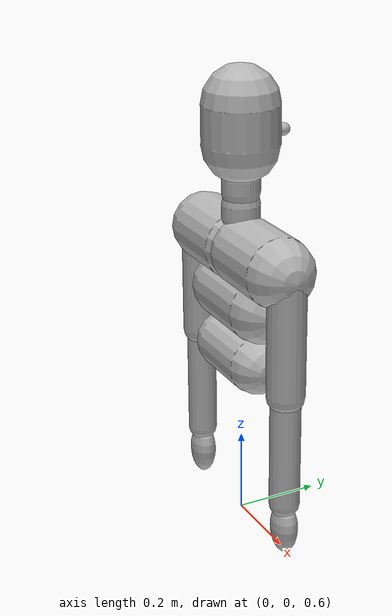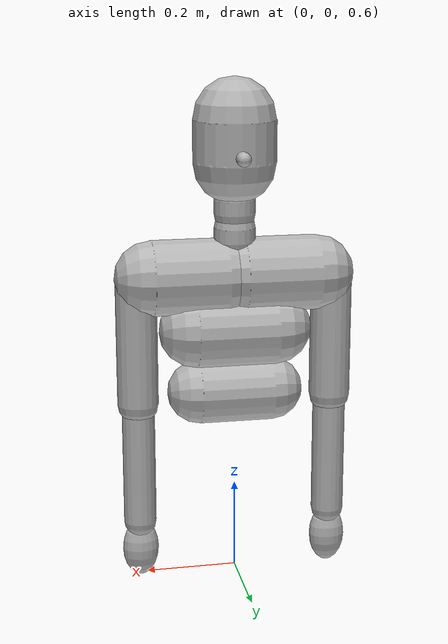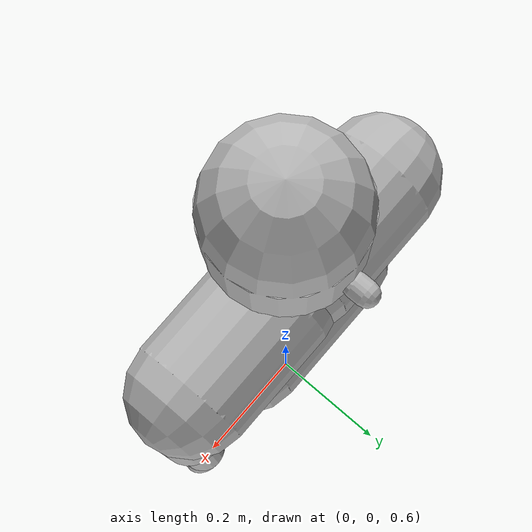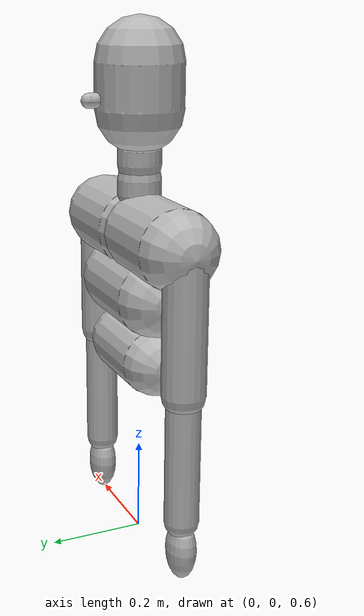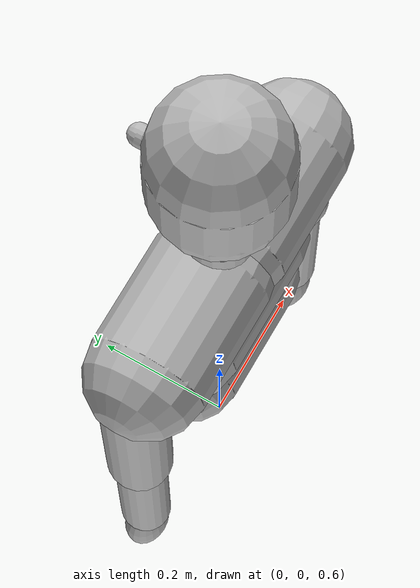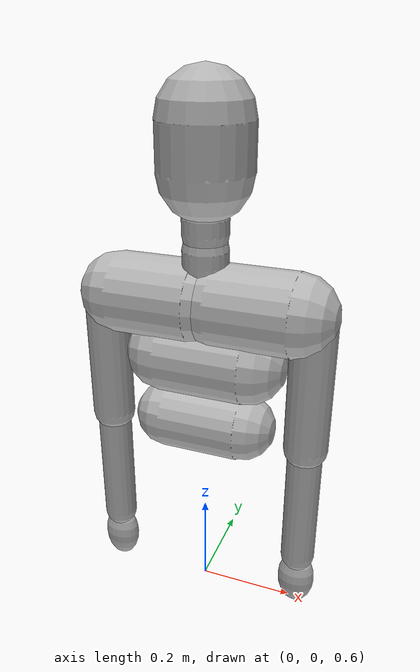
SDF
<?xml version='1.0' ?>
<!-- Humanoid model
Toyota Research Institute-->
<sdf version='1.7'>
  <model name='humanoid_v1'>
    <pose>0.0 0.0 0 0 0 0</pose>

    <link name='waist'>
      <pose>0 0 1.02 0 0 0</pose>
      <inertial>
        <mass>12</mass>
        <inertia>
          <ixx>0.0</ixx>
          <ixy>0</ixy>
          <ixz>0</ixz>
          <iyy>0.0</iyy>
          <iyz>0</iyz>
          <izz>0.0</izz>
        </inertia>
      </inertial>
      <visual name="cap_waist">
        <pose>0 0 0 0 1.5708 0</pose>
        <geometry>
          <capsule>
            <radius>0.07</radius>
            <length>0.16</length>
          </capsule>
        </geometry>
        <material>
          <specular>1 1 0.1 1</specular>
        </material>
      </visual>
      <collision name="col_cap_waist">
        <pose>0 0 0 0 1.5708 0</pose>
        <geometry>
          <capsule>
            <radius>0.07</radius>
            <length>0.16</length>
          </capsule>
        </geometry>
        <drake:proximity_properties>
          <drake:compliant_hydroelastic/>
          <drake:hydroelastic_modulus>2.5e7</drake:hydroelastic_modulus>
          <drake:mesh_resolution_hint>0.01</drake:mesh_resolution_hint>
          <drake:mu_dynamic>0.3</drake:mu_dynamic>
          <drake:mu_static>0.3</drake:mu_static>
          <drake:hunt_crossley_dissipation>0.25</drake:hunt_crossley_dissipation>
        </drake:proximity_properties>
      </collision>
    </link>

    <link name='torso'>
      <pose relative_to='waist'>0 0 0.20 0 0 0</pose>
      <inertial>
        <mass>16</mass>
        <inertia>
          <ixx>0.0</ixx>
          <ixy>0</ixy>
          <ixz>0</ixz>
          <iyy>0.0</iyy>
          <iyz>0</iyz>
          <izz>0.0</izz>
        </inertia>
      </inertial>
      <visual name="cap_upper_L">
        <pose>-0.1 0 0.06 0 1.5708 0</pose>
        <geometry>
          <capsule>
            <radius>0.082</radius>
            <length>0.16</length>
          </capsule>
        </geometry>
      </visual>
      <collision name="col_cap_upper_L">
        <pose>-0.1 0 0.06 0 1.5708 0</pose>
        <geometry>
          <capsule>
            <radius>0.082</radius>
            <length>0.16</length>
          </capsule>
        </geometry>
        <drake:proximity_properties>
          <drake:compliant_hydroelastic/>
          <drake:hydroelastic_modulus>2.5e7</drake:hydroelastic_modulus>
          <drake:mesh_resolution_hint>0.01</drake:mesh_resolution_hint>
          <drake:mu_dynamic>0.3</drake:mu_dynamic>
          <drake:mu_static>0.3</drake:mu_static>
          <drake:hunt_crossley_dissipation>0.25</drake:hunt_crossley_dissipation>
        </drake:proximity_properties>
      </collision>
      <visual name="cap_upper_R">
        <pose>0.1 0 0.06 0 1.5708 0</pose>
        <geometry>
          <capsule>
            <radius>0.082</radius>
            <length>0.16</length>
          </capsule>
        </geometry>
      </visual>
      <collision name="col_cap_upper_R">
        <pose>0.1 0 0.06 0 1.5708 0</pose>
        <geometry>
          <capsule>
            <radius>0.082</radius>
            <length>0.16</length>
          </capsule>
        </geometry>
        <drake:proximity_properties>
          <drake:compliant_hydroelastic/>
          <drake:hydroelastic_modulus>2.5e7</drake:hydroelastic_modulus>
          <drake:mesh_resolution_hint>0.01</drake:mesh_resolution_hint>
          <drake:mu_dynamic>0.3</drake:mu_dynamic>
          <drake:mu_static>0.3</drake:mu_static>
          <drake:hunt_crossley_dissipation>0.25</drake:hunt_crossley_dissipation>
        </drake:proximity_properties>
      </collision>
      <visual name="cap_lower">
        <pose>0 0.005 -0.06 0 1.5708 0</pose>
        <geometry>
          <capsule>
            <radius>0.08</radius>
            <length>0.175</length>
          </capsule>
        </geometry>
        <material>
          <specular>1 1 0.1 1</specular>
        </material>
      </visual>
      <collision name="col_cap_lower">
        <pose>0 0.005 -0.06 0 1.5708 0</pose>
        <geometry>
          <capsule>
            <radius>0.08</radius>
            <length>0.175</length>
          </capsule>
        </geometry>
        <drake:proximity_properties>
          <drake:compliant_hydroelastic/>
          <drake:hydroelastic_modulus>2.5e7</drake:hydroelastic_modulus>
          <drake:mesh_resolution_hint>0.01</drake:mesh_resolution_hint>
          <drake:mu_dynamic>0.3</drake:mu_dynamic>
          <drake:mu_static>0.3</drake:mu_static>
          <drake:hunt_crossley_dissipation>0.25</drake:hunt_crossley_dissipation>
        </drake:proximity_properties>
      </collision>
      <visual name="cap_lower_neck">
        <pose>0 0 0.15 0 0 0</pose>
        <geometry>
          <capsule>
            <radius>0.045</radius>
            <length>0.03</length>
          </capsule>
        </geometry>
      </visual>
      <collision name="col_cap_lower_neck">
        <pose>0 0 0.15 0 0 0</pose>
        <geometry>
          <capsule>
            <radius>0.045</radius>
            <length>0.03</length>
          </capsule>
        </geometry>
        <drake:proximity_properties>
          <drake:compliant_hydroelastic/>
          <drake:hydroelastic_modulus>2.5e7</drake:hydroelastic_modulus>
          <drake:mesh_resolution_hint>0.01</drake:mesh_resolution_hint>
          <drake:mu_dynamic>0.3</drake:mu_dynamic>
          <drake:mu_static>0.3</drake:mu_static>
          <drake:hunt_crossley_dissipation>0.25</drake:hunt_crossley_dissipation>
        </drake:proximity_properties>
      </collision>
    </link>

    <link name='head'>
      <pose relative_to='torso'>0 0 0.35 0 0 0</pose>
      <inertial>
        <mass>6.4</mass>
        <inertia>
          <ixx>0.0</ixx>
          <ixy>0</ixy>
          <ixz>0</ixz>
          <iyy>0.0</iyy>
          <iyz>0</iyz>
          <izz>0.0</izz>
        </inertia>
      </inertial>
      <visual name="cap_face">
        <pose>0 0 0 0 0 0</pose>
        <geometry>
          <capsule>
            <radius>0.09</radius>
            <length>0.09</length>
          </capsule>
        </geometry>
      </visual>
      <visual name="cap_nose">
        <pose>0 0.1 -0.025 1.5708 0 0</pose>
        <geometry>
          <capsule>
            <radius>0.015</radius>
            <length>0.015</length>
          </capsule>
        </geometry>
      </visual>
      <collision name="col_cap_face">
        <pose>0 0 0 0 0 0</pose>
        <geometry>
          <capsule>
            <radius>0.09</radius>
            <length>0.09</length>
          </capsule>
        </geometry>
        <drake:proximity_properties>
          <drake:compliant_hydroelastic/>
          <drake:hydroelastic_modulus>2.5e7</drake:hydroelastic_modulus>
          <drake:mesh_resolution_hint>0.01</drake:mesh_resolution_hint>
          <drake:mu_dynamic>0.3</drake:mu_dynamic>
          <drake:mu_static>0.3</drake:mu_static>
          <drake:hunt_crossley_dissipation>0.25</drake:hunt_crossley_dissipation>
        </drake:proximity_properties>
      </collision>
      <visual name="cap_upper_neck">
        <pose>0 0 -0.14 0 0 0</pose>
        <geometry>
          <capsule>
            <radius>0.045</radius>
            <length>0.03</length>
          </capsule>
        </geometry>
      </visual>
      <collision name="col_cap_upper_neck">
        <pose>0 0 -0.14 0 0 0</pose>
        <geometry>
          <capsule>
            <radius>0.045</radius>
            <length>0.03</length>
          </capsule>
        </geometry>
        <drake:proximity_properties>
          <drake:compliant_hydroelastic/>
          <drake:hydroelastic_modulus>2.5e7</drake:hydroelastic_modulus>
          <drake:mesh_resolution_hint>0.01</drake:mesh_resolution_hint>
          <drake:mu_dynamic>0.3</drake:mu_dynamic>
          <drake:mu_static>0.3</drake:mu_static>
          <drake:hunt_crossley_dissipation>0.25</drake:hunt_crossley_dissipation>
        </drake:proximity_properties>
      </collision>
    </link>

    <link name='arm_L'>
      <pose relative_to='torso'>0.215 0 -0.08 0 0 0</pose>
      <inertial>
        <mass>2.4</mass>
        <inertia>
          <ixx>0.0</ixx>
          <ixy>0</ixy>
          <ixz>0</ixz>
          <iyy>0.0</iyy>
          <iyz>0</iyz>
          <izz>0.0</izz>
        </inertia>
      </inertial>
      <visual name="cyl_arm">
        <pose>0 0 0 0 0 0</pose>
        <geometry>
          <capsule>
            <radius>0.045</radius>
            <length>0.28</length>
          </capsule>
        </geometry>
      </visual>
      <collision name="col_cyl_arm">
        <pose>0 0 0 0 0 0</pose>
        <geometry>
          <capsule>
            <radius>0.045</radius>
            <length>0.28</length>
          </capsule>
        </geometry>
        <drake:proximity_properties>
          <drake:compliant_hydroelastic/>
          <drake:hydroelastic_modulus>2.5e7</drake:hydroelastic_modulus>
          <drake:mesh_resolution_hint>0.01</drake:mesh_resolution_hint>
          <drake:mu_dynamic>0.3</drake:mu_dynamic>
          <drake:mu_static>0.3</drake:mu_static>
          <drake:hunt_crossley_dissipation>0.25</drake:hunt_crossley_dissipation>
        </drake:proximity_properties>
      </collision>
    </link>

    <link name='forearm_L'>
      <pose relative_to='arm_L'>0 0 -0.29 0 0 0</pose>
      <inertial>
        <mass>1.4</mass>
        <inertia>
          <ixx>0.0</ixx>
          <ixy>0</ixy>
          <ixz>0</ixz>
          <iyy>0.0</iyy>
          <iyz>0</iyz>
          <izz>0.0</izz>
        </inertia>
      </inertial>
      <visual name="cyl_arm">
        <pose>0 0 0 0 0 0</pose>
        <geometry>
          <capsule>
            <radius>0.036</radius>
            <length>0.25</length>
          </capsule>
        </geometry>
      </visual>
      <collision name="col_cyl_arm">
        <pose>0 0 0 0 0 0</pose>
        <geometry>
          <capsule>
            <radius>0.036</radius>
            <length>0.25</length>
          </capsule>
        </geometry>
        <drake:proximity_properties>
          <drake:compliant_hydroelastic/>
          <drake:hydroelastic_modulus>2.5e7</drake:hydroelastic_modulus>
          <drake:mesh_resolution_hint>0.01</drake:mesh_resolution_hint>
          <drake:mu_dynamic>0.3</drake:mu_dynamic>
          <drake:mu_static>0.3</drake:mu_static>
          <drake:hunt_crossley_dissipation>0.25</drake:hunt_crossley_dissipation>
        </drake:proximity_properties>
      </collision>
    </link>

    <link name='hand_L'>
      <pose relative_to='forearm_L'>0 0 -0.19 0 0 0</pose>
      <inertial>
        <mass>0.5</mass>
        <inertia>
          <ixx>0.0</ixx>
          <ixy>0</ixy>
          <ixz>0</ixz>
          <iyy>0.0</iyy>
          <iyz>0</iyz>
          <izz>0.0</izz>
        </inertia>
      </inertial>
      <visual name="ellip_hand">
        <pose>0 0 0 0 0 0</pose>
        <geometry>
          <ellipsoid>
            <radii>0.04 0.03 0.065</radii>
          </ellipsoid>
        </geometry>
      </visual>
      <collision name="col_ellip_hand">
        <pose>0 0 0 0 0 0</pose>
        <geometry>
          <ellipsoid>
            <radii>0.04 0.03 0.065</radii>
          </ellipsoid>
        </geometry>
        <drake:proximity_properties>
          <drake:compliant_hydroelastic/>
          <drake:hydroelastic_modulus>2.5e7</drake:hydroelastic_modulus>
          <drake:mesh_resolution_hint>0.01</drake:mesh_resolution_hint>
          <drake:mu_dynamic>0.3</drake:mu_dynamic>
          <drake:mu_static>0.3</drake:mu_static>
          <drake:hunt_crossley_dissipation>0.25</drake:hunt_crossley_dissipation>
        </drake:proximity_properties>
      </collision>
    </link>

    <link name='arm_R'>
      <pose relative_to='torso'>-0.215 0 -0.08 0 0 0</pose>
      <inertial>
        <mass>2.4</mass>
        <inertia>
          <ixx>0.0</ixx>
          <ixy>0</ixy>
          <ixz>0</ixz>
          <iyy>0.0</iyy>
          <iyz>0</iyz>
          <izz>0.0</izz>
        </inertia>
      </inertial>
      <visual name="cyl_arm">
        <pose>0 0 0 0 0 0</pose>
        <geometry>
          <capsule>
            <radius>0.045</radius>
            <length>0.28</length>
          </capsule>
        </geometry>
      </visual>
      <collision name="col_cyl_arm">
        <pose>0 0 0 0 0 0</pose>
        <geometry>
          <capsule>
            <radius>0.045</radius>
            <length>0.28</length>
          </capsule>
        </geometry>
        <drake:proximity_properties>
          <drake:compliant_hydroelastic/>
          <drake:hydroelastic_modulus>2.5e7</drake:hydroelastic_modulus>
          <drake:mesh_resolution_hint>0.01</drake:mesh_resolution_hint>
          <drake:mu_dynamic>0.3</drake:mu_dynamic>
          <drake:mu_static>0.3</drake:mu_static>
          <drake:hunt_crossley_dissipation>0.25</drake:hunt_crossley_dissipation>
        </drake:proximity_properties>
      </collision>
    </link>

    <link name='forearm_R'>
      <pose relative_to='arm_R'>0 0 -0.29 0 0 0</pose>
      <inertial>
        <mass>1.4</mass>
        <inertia>
          <ixx>0.0</ixx>
          <ixy>0</ixy>
          <ixz>0</ixz>
          <iyy>0.0</iyy>
          <iyz>0</iyz>
          <izz>0.0</izz>
        </inertia>
      </inertial>
      <visual name="cyl_arm">
        <pose>0 0 0 0 0 0</pose>
        <geometry>
          <capsule>
            <radius>0.036</radius>
            <length>0.25</length>
          </capsule>
        </geometry>
      </visual>
      <collision name="col_cyl_arm">
        <pose>0 0 0 0 0 0</pose>
        <geometry>
          <capsule>
            <radius>0.036</radius>
            <length>0.25</length>
          </capsule>
        </geometry>
        <drake:proximity_properties>
          <drake:compliant_hydroelastic/>
          <drake:hydroelastic_modulus>2.5e7</drake:hydroelastic_modulus>
          <drake:mesh_resolution_hint>0.01</drake:mesh_resolution_hint>
          <drake:mu_dynamic>0.3</drake:mu_dynamic>
          <drake:mu_static>0.3</drake:mu_static>
          <drake:hunt_crossley_dissipation>0.25</drake:hunt_crossley_dissipation>
        </drake:proximity_properties>
      </collision>
    </link>

    <link name='hand_R'>
      <pose relative_to='forearm_R'>0 0 -0.19 0 0 0</pose>
      <inertial>
        <mass>0.5</mass>
        <inertia>
          <ixx>0.0</ixx>
          <ixy>0</ixy>
          <ixz>0</ixz>
          <iyy>0.0</iyy>
          <iyz>0</iyz>
          <izz>0.0</izz>
        </inertia>
      </inertial>
      <visual name="ellip_hand">
        <pose>0 0 0 0 0 0</pose>
        <geometry>
          <ellipsoid>
            <radii>0.04 0.03 0.065</radii>
          </ellipsoid>
        </geometry>
      </visual>
      <collision name="col_ellip_hand">
        <pose>0 0 0 0 0 0</pose>
        <geometry>
          <ellipsoid>
            <radii>0.04 0.03 0.065</radii>
          </ellipsoid>
        </geometry>
        <drake:proximity_properties>
          <drake:compliant_hydroelastic/>
          <drake:hydroelastic_modulus>2.5e7</drake:hydroelastic_modulus>
          <drake:mesh_resolution_hint>0.01</drake:mesh_resolution_hint>
          <drake:mu_dynamic>0.3</drake:mu_dynamic>
          <drake:mu_static>0.3</drake:mu_static>
          <drake:hunt_crossley_dissipation>0.25</drake:hunt_crossley_dissipation>
        </drake:proximity_properties>
      </collision>
    </link>

    <!-- universal joint for neck -->
    <link name='glue_torso_neck'>
      <pose relative_to='torso'>0 0.0 0.18 0 0 0</pose>
      <inertial>
        <mass>0.1</mass>
      </inertial>
    </link>

    <joint name='neck_joint1' type='revolute'>
      <parent>torso</parent>
      <child>glue_torso_neck</child>
      <pose>0 0 0 0 0 0</pose>
      <drake:gear_ratio>1 </drake:gear_ratio>
      <axis>
        <xyz>1.0 0.0 0.0</xyz>
        <limit>
          <lower>-1.2</lower>
          <upper>0.5</upper>
          <effort>-1.0</effort>
        </limit>
        <dynamics>
          <spring_stiffness>50</spring_stiffness>
          <damping>5 </damping>
          <friction>0</friction>
        </dynamics>
      </axis>
    </joint>
    <joint name='neck_joint2' type='revolute'>
      <parent>glue_torso_neck</parent>
      <child>head</child>
      <pose>0 0 -0.17 0 0 0</pose>
      <drake:gear_ratio>1 </drake:gear_ratio>
      <axis>
        <xyz>0.0 1.0 0.0</xyz>
        <limit>
          <lower>-0.6</lower>
          <upper>0.6</upper>
          <effort>-1.0</effort>
        </limit>
        <dynamics>
          <spring_stiffness>100</spring_stiffness>
          <damping>10 </damping>
        </dynamics>
      </axis>
    </joint>

    <!-- universal joint for shoulder L-->
    <link name='glue_torso_armL'>
      <pose relative_to='torso'>0.215 0.0 0.07 0 0 0</pose>
      <inertial>
        <mass>0.1</mass>
      </inertial>
    </link>

    <joint name='shoulderL_joint1' type='revolute'>
      <parent>torso</parent>
      <child>glue_torso_armL</child>
      <pose>0 0 0 0 0 0 </pose>
      <axis>
        <xyz>1.0 0.0 0.0</xyz>
        <limit>
          <lower>-0.5</lower>
          <upper>3.1416</upper>
          <effort>-1.0</effort>
        </limit>
        <dynamics>
          <spring_stiffness>100</spring_stiffness>
          <damping>10 </damping>
        </dynamics>
      </axis>
    </joint>
    <joint name='shoulderL_joint2' type='revolute'>
      <parent>glue_torso_armL</parent>
      <child>arm_L</child>
      <pose>0 0 0.16 0 0 0 </pose>
      <axis>
        <xyz>0.0 1.0 0.0</xyz>
        <limit>
          <lower>-1.5708</lower>
          <upper>0.7853</upper>
          <effort>-1.0</effort>
        </limit>
        <dynamics>
          <spring_stiffness>100</spring_stiffness>
          <damping>10 </damping>
        </dynamics>
      </axis>
    </joint>

    <!-- revolute joint for elbow L-->
    <joint name='elbowL_joint' type='revolute'>
      <parent>arm_L</parent>
      <child>forearm_L</child>
      <pose>0 0 0.15 0 0 0 </pose>
      <axis>
        <xyz>1.0 0.0 0.0</xyz>
        <limit>
          <lower>-0.01</lower>
          <upper>2.3</upper>
          <effort>-1.0</effort>
        </limit>
        <dynamics>
          <spring_stiffness>10</spring_stiffness>
          <damping>1 </damping>
        </dynamics>
      </axis>
    </joint>

    <!-- revolute joint for wrist L -->
    <joint name='wristL_joint' type='revolute'>
      <parent>forearm_L</parent>
      <child>hand_L</child>
      <pose>0 0 0.05 0 0 0 </pose>
      <axis>
        <xyz>1.0 0.0 0.0</xyz>
        <limit>
          <lower>-1.5</lower>
          <upper>1.5</upper>
          <effort>-1.0</effort>
        </limit>
        <dynamics>
          <spring_stiffness>10</spring_stiffness>
          <damping>1 </damping>
        </dynamics>
      </axis>
    </joint>

   <!-- universal joint for shoulder R-->
    <link name='glue_torso_armR'>
      <pose relative_to='torso'>-0.215 0.0 0.07 0 0 0</pose>
      <inertial>
        <mass>0.1</mass>
      </inertial>
    </link>

    <joint name='shoulderR_joint1' type='revolute'>
      <parent>torso</parent>
      <child>glue_torso_armR</child>
      <pose>0 0 0 0 0 0 </pose>
      <axis>
        <xyz>1.0 0.0 0.0</xyz>
        <limit>
          <lower>-0.5</lower>
          <upper>3.1416</upper>
          <effort>-1.0</effort>
        </limit>
        <dynamics>
          <spring_stiffness>100</spring_stiffness>
          <damping>10 </damping>
        </dynamics>
      </axis>
    </joint>
    <joint name='shoulderR_joint2' type='revolute'>
      <parent>glue_torso_armR</parent>
      <child>arm_R</child>
      <pose>0 0 0.16 0 0 3.1416 </pose>
      <axis>
        <xyz>0.0 1.0 0.0</xyz>
        <limit>
          <lower>-1.5708</lower>
          <upper>0.7853</upper>
          <effort>-1.0</effort>
        </limit>
        <dynamics>
          <spring_stiffness>100</spring_stiffness>
          <damping>10 </damping>
        </dynamics>
      </axis>
    </joint>

    <!-- revolute joint for elbow R-->
    <joint name='elbowR_joint' type='revolute'>
      <parent>arm_R</parent>
      <child>forearm_R</child>
      <pose>0 0 0.15 0 0 0 </pose>
      <axis>
        <xyz>1.0 0.0 0.0</xyz>
        <limit>
          <lower>-0.01</lower>
          <upper>2.3</upper>
          <effort>-1.0</effort>
        </limit>
        <dynamics>
          <spring_stiffness>10</spring_stiffness>
          <damping>1 </damping>
        </dynamics>
      </axis>
    </joint>

    <!-- revolute joint for wrist R-->
    <joint name='wristR_joint' type='revolute'>
      <parent>forearm_R</parent>
      <child>hand_R</child>
      <pose>0 0 0.05 0 0 0 </pose>
      <axis>
        <xyz>1.0 0.0 0.0</xyz>
        <limit>
          <lower>-1.5</lower>
          <upper>1.5</upper>
          <effort>-1.0</effort>
        </limit>
        <dynamics>
          <spring_stiffness>10</spring_stiffness>
          <damping>1 </damping>
        </dynamics>
      </axis>
    </joint>

    <!-- ball joint for torso and waist link -->
    <link name='glue_torso_waist1'>
      <pose relative_to='waist'>0 0.0 0.065 0 0 0</pose>
      <inertial>
        <mass>0.1</mass>
      </inertial>
    </link>

    <link name='glue_torso_waist2'>
      <pose relative_to='waist'>0 0.0 0.065 0 0 0</pose>
      <inertial>
        <mass>0.1</mass>
      </inertial>
    </link>

    <joint name='torso_joint1' type='revolute'>
      <parent>waist</parent>
      <child>glue_torso_waist1</child>
      <pose>0 0 0 0 0 0</pose>
      <axis>
        <xyz>1.0 0.0 0.0</xyz>
        <limit>
          <lower>-0.2</lower>
          <upper>0.05</upper>
          <effort>-1.0</effort>
        </limit>
        <dynamics>
          <spring_stiffness>250</spring_stiffness>
          <damping>50 </damping>
        </dynamics>
      </axis>
    </joint>
    <joint name='torso_joint2' type='revolute'>
      <parent>glue_torso_waist1</parent>
      <child>glue_torso_waist2</child>
      <pose>0 0 0 0 0 0</pose>
      <axis>
        <xyz>0.0 1.0 0.0</xyz>
        <limit>
          <lower>-0.13</lower>
          <upper>0.13</upper>
          <effort>-1.0</effort>
        </limit>
        <dynamics>
          <spring_stiffness>250</spring_stiffness>
          <damping>50 </damping>
        </dynamics>
      </axis>
    </joint>
    <joint name='torso_joint3' type='revolute'>
      <parent>glue_torso_waist2</parent>
      <child>torso</child>
      <pose>0 0 0 0 0 0</pose>
      <axis>
        <xyz>0.0 0.0 1.0</xyz>
        <limit>
          <lower>-0.3</lower>
          <upper>0.3</upper>
          <effort>-1.0</effort>
        </limit>
        <dynamics>
          <spring_stiffness>250</spring_stiffness>
          <damping>50 </damping>
        </dynamics>
      </axis>
    </joint>

  </model>
</sdf>
